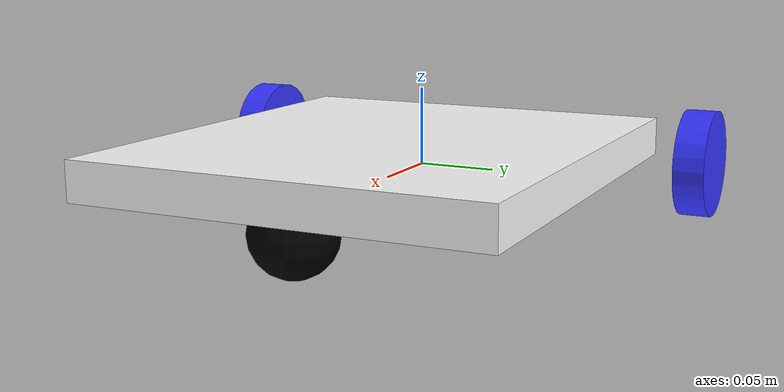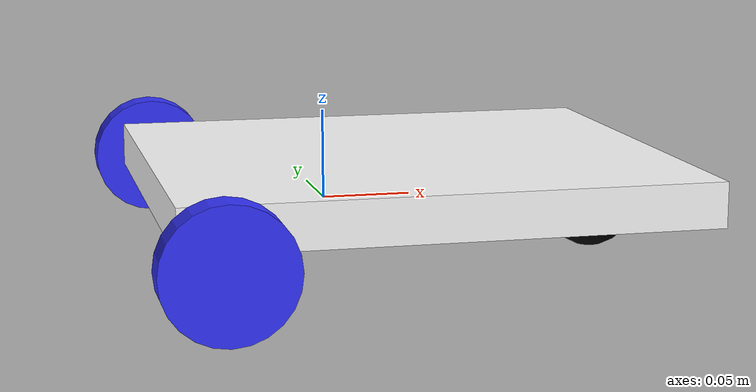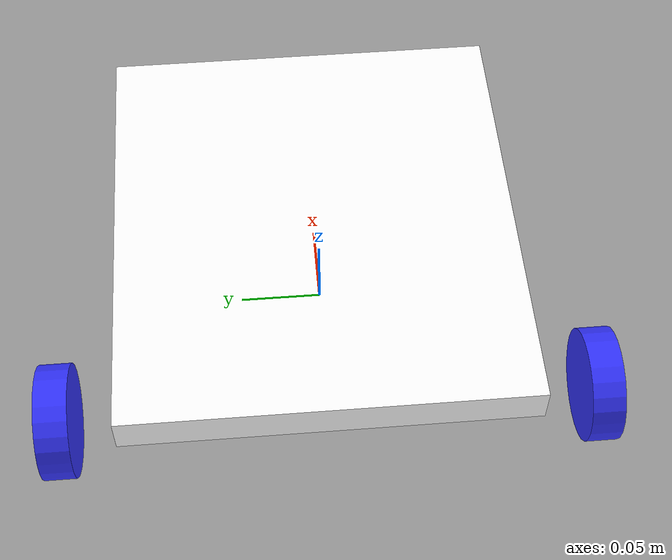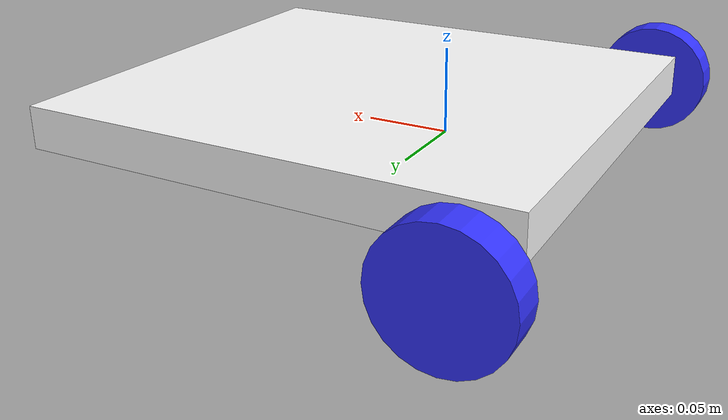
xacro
<?xml version="1.0"?>
<robot xmlns:xacro="http://www.ros.org/wiki/xacro" >

    <xacro:include filename="inertial_macros.xacro"/>

    <material name="white">
        <color rgba="1 1 1 1" />
    </material>

    <material name="orange">
        <color rgba="1 0.3 0.1 1"/>
    </material>

    <material name="blue">
        <color rgba="0.2 0.2 1 1"/>
    </material>

    <material name="black">
        <color rgba="0 0 0 1"/>
    </material>

    <!-- BASE LINK -->

    <link name="base_link">

    </link>

    <!-- CHASSIS LINK -->

    <joint name="chassis_joint" type="fixed">
        <parent link="base_link"/>
        <child link="chassis"/>
        <origin xyz="-0.1 0 0"/>
    </joint>

    <link name="chassis">
        <visual>
            <origin xyz="0.145 0 0.0125"/>
            <geometry>
                <box size="0.29 0.26 0.025"/>
            </geometry>
            <material name="white"/>
        </visual>
        <collision>
            <origin xyz="0.145 0 0.0125"/>
            <geometry>
                <box size="0.29 0.26 0.025"/>
            </geometry>
        </collision>
        <xacro:inertial_box mass="0.5" x="0.29" y="0.26" z="0.025">
            <origin xyz="0.145 0 0.0125" rpy="0 0 0"/>
        </xacro:inertial_box>
    </link>

    <gazebo reference="chassis">
        <material>Gazebo/White</material>
    </gazebo>

    <!-- LEFT WHEEL LINK -->

    <joint name="left_wheel_joint" type="continuous">
        <parent link="base_link"/>
        <child link="left_wheel"/>
        <origin xyz="-0.08 0.165 0" rpy="-${pi/2} 0 0" />
        <axis xyz="0 0 1"/>
    </joint>

    <link name="left_wheel">
        <visual>
            <geometry>
                <cylinder radius="0.035" length="0.02"/>
            </geometry>
            <material name="blue"/>
        </visual>
        <collision>
            <geometry>
                <cylinder radius="0.035" length="0.02"/>
            </geometry>
        </collision>
        <xacro:inertial_cylinder mass="0.1" length="0.02" radius="0.035">
            <origin xyz="0 0 0" rpy="0 0 0"/>
        </xacro:inertial_cylinder>
    </link>

    <gazebo reference="left_wheel">
        <material>Gazebo/Blue</material>
    </gazebo>

    <!-- RIGHT WHEEL LINK -->

    <joint name="right_wheel_joint" type="continuous">
        <parent link="base_link"/>
        <child link="right_wheel"/>
        <origin xyz="-0.08 -0.165 0" rpy="${pi/2} 0 0" />
        <axis xyz="0 0 -1"/>
    </joint>

    <link name="right_wheel">
        <visual>
            <geometry>
                <cylinder radius="0.035" length="0.02"/>
            </geometry>
            <material name="blue"/>
        </visual>
        <collision>
            <geometry>
                <cylinder radius="0.035" length="0.02"/>
            </geometry>
        </collision>
        <xacro:inertial_cylinder mass="0.1" length="0.02" radius="0.035">
            <origin xyz="0 0 0" rpy="0 0 0"/>
        </xacro:inertial_cylinder>
    </link>

    <gazebo reference="right_wheel">
        <material>Gazebo/Blue</material>
    </gazebo>

    <!-- CASTER WHEEL LINK -->

    <joint name="caster_wheel_joint" type="fixed">
        <parent link="chassis"/>
        <child link="caster_wheel"/>
        <origin xyz="0.26 0 -0.01"/>
    </joint>

    <link name="caster_wheel">
        <visual>
            <geometry>
                <sphere radius="0.026"/>
            </geometry>
            <material name="black"/>
        </visual>
        <collision>
            <geometry>
                <sphere radius="0.026"/>
            </geometry>
        </collision>
        <xacro:inertial_sphere mass="0.1" radius="0.026">
            <origin xyz="0 0 0" rpy="0 0 0"/>
        </xacro:inertial_sphere>
    </link>

    <gazebo reference="caster_wheel">
        <material>Gazebo/Black</material>
        <mu1 value="0.001"/>
        <mu2 value="0.001"/>
    </gazebo>

</robot>
